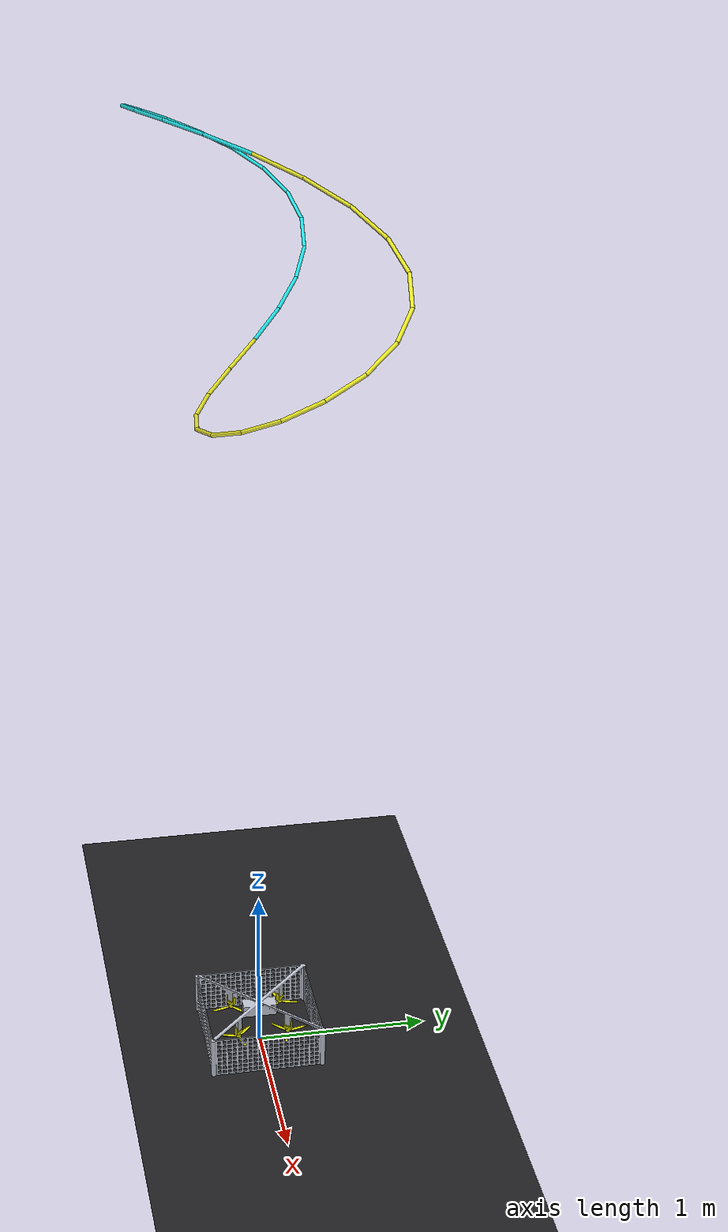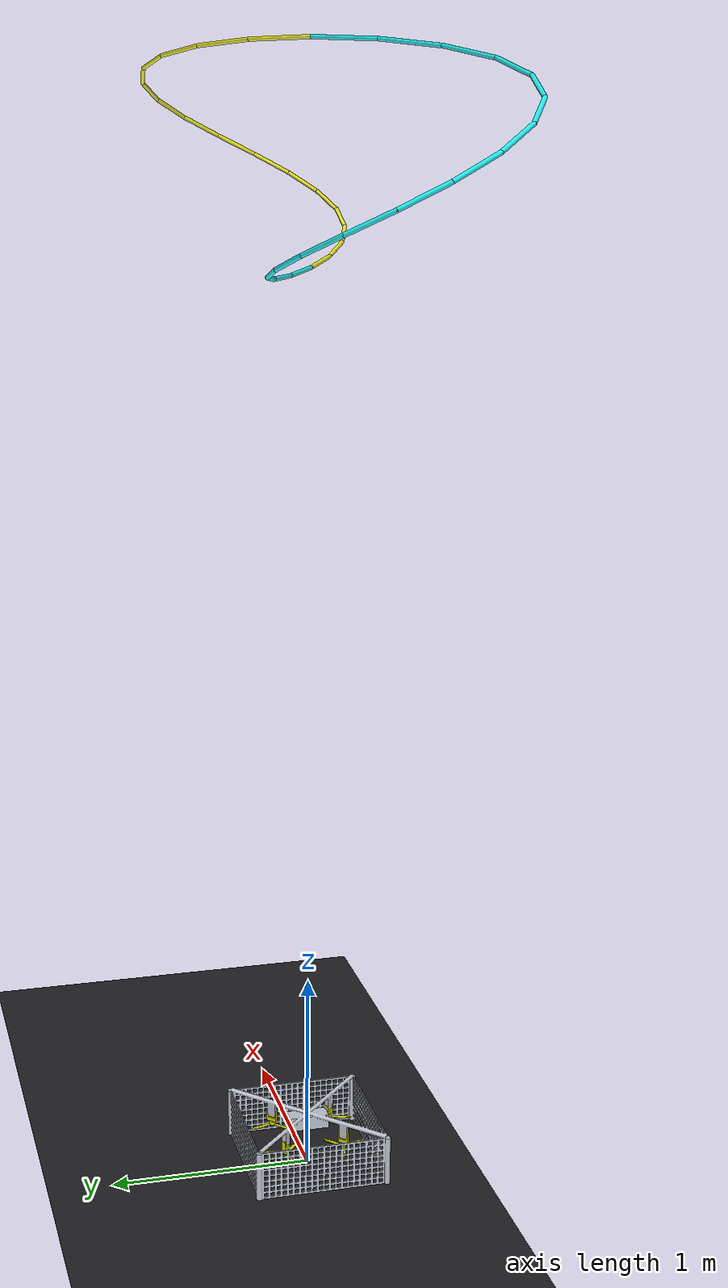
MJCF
<mujoco model="Palletrone">
  <include file="Palletrone.xml"/>

  <visual>
    <headlight diffuse="0.6 0.6 0.6" ambient="0.1 0.1 0.1" specular="0 0 0"/>
    <rgba haze="0.3 0.3 0.3 1"/>
    <global azimuth="45" elevation="35.264" ellipsoidinertia="false"/>
  </visual>

  <asset>
    <texture type="skybox" builtin="gradient" rgb1="0.5 0.5 0.5" rgb2="0 0 0" width="512" height="3072"/>
    <texture type="2d" name="groundplane" builtin="checker" mark="edge" rgb1="0.15 0.15 0.17" rgb2="0.1 0.1 0.1"
      markrgb="0.3 0.3 0.3" width="100" height="100"/>
    <material name="groundplane" texture="groundplane" texuniform="true" texrepeat="2 2" reflectance="0"/>
  </asset>

  <worldbody>
    <light pos="0 0 10" dir="0 0 -1" directional="true"/>
    <geom name="floor" size="0 0 0.05" type="plane" material="groundplane" contype="1" conaffinity="1"/>

    <geom type="capsule" fromto="0.0000 0.0000 5.5000 0.3902 0.1913 5.4904" size="0.01" rgba="1 1 0 0.8" contype="0" conaffinity="0"/>
    <geom type="capsule" fromto="0.3902 0.1913 5.4904 0.7654 0.3536 5.4619" size="0.01" rgba="1 1 0 0.8" contype="0" conaffinity="0"/>
    <geom type="capsule" fromto="0.7654 0.3536 5.4619 1.1111 0.4619 5.4157" size="0.01" rgba="1 1 0 0.8" contype="0" conaffinity="0"/>
    <geom type="capsule" fromto="1.1111 0.4619 5.4157 1.4142 0.5000 5.3536" size="0.01" rgba="1 1 0 0.8" contype="0" conaffinity="0"/>
    <geom type="capsule" fromto="1.4142 0.5000 5.3536 1.6629 0.4619 5.2778" size="0.01" rgba="1 1 0 0.8" contype="0" conaffinity="0"/>
    <geom type="capsule" fromto="1.6629 0.4619 5.2778 1.8478 0.3536 5.1913" size="0.01" rgba="1 1 0 0.8" contype="0" conaffinity="0"/>
    <geom type="capsule" fromto="1.8478 0.3536 5.1913 1.9635 0.1913 5.0975" size="0.01" rgba="1 1 0 0.8" contype="0" conaffinity="0"/>
    <geom type="capsule" fromto="1.9635 0.1913 5.0975 2.0000 0.0000 5.0000" size="0.01" rgba="1 1 0 0.8" contype="0" conaffinity="0"/>
    <geom type="capsule" fromto="2.0000 0.0000 5.0000 1.9635 -0.1913 4.9025" size="0.01" rgba="1 1 0 0.8" contype="0" conaffinity="0"/>
    <geom type="capsule" fromto="1.9635 -0.1913 4.9025 1.8478 -0.3536 4.8087" size="0.01" rgba="1 1 0 0.8" contype="0" conaffinity="0"/>
    <geom type="capsule" fromto="1.8478 -0.3536 4.8087 1.6629 -0.4619 4.7222" size="0.01" rgba="1 1 0 0.8" contype="0" conaffinity="0"/>
    <geom type="capsule" fromto="1.6629 -0.4619 4.7222 1.4142 -0.5000 4.6464" size="0.01" rgba="1 1 0 0.8" contype="0" conaffinity="0"/>
    <geom type="capsule" fromto="1.4142 -0.5000 4.6464 1.1111 -0.4619 4.5843" size="0.01" rgba="1 1 0 0.8" contype="0" conaffinity="0"/>
    <geom type="capsule" fromto="1.1111 -0.4619 4.5843 0.7654 -0.3536 4.5381" size="0.01" rgba="1 1 0 0.8" contype="0" conaffinity="0"/>
    <geom type="capsule" fromto="0.7654 -0.3536 4.5381 0.3902 -0.1913 4.5096" size="0.01" rgba="1 1 0 0.8" contype="0" conaffinity="0"/>
    <geom type="capsule" fromto="0.3902 -0.1913 4.5096 0.0000 -0.0000 4.5000" size="0.01" rgba="1 1 0 0.8" contype="0" conaffinity="0"/>

    <geom type="capsule" fromto="0.0000 -0.0000 4.5000 -0.3902 0.1913 4.5096" size="0.01" rgba="0 1 1 0.8" contype="0" conaffinity="0"/>
    <geom type="capsule" fromto="-0.3902 0.1913 4.5096 -0.7654 0.3536 4.5381" size="0.01" rgba="0 1 1 0.8" contype="0" conaffinity="0"/>
    <geom type="capsule" fromto="-0.7654 0.3536 4.5381 -1.1111 0.4619 4.5843" size="0.01" rgba="0 1 1 0.8" contype="0" conaffinity="0"/>
    <geom type="capsule" fromto="-1.1111 0.4619 4.5843 -1.4142 0.5000 4.6464" size="0.01" rgba="0 1 1 0.8" contype="0" conaffinity="0"/>
    <geom type="capsule" fromto="-1.4142 0.5000 4.6464 -1.6629 0.4619 4.7222" size="0.01" rgba="0 1 1 0.8" contype="0" conaffinity="0"/>
    <geom type="capsule" fromto="-1.6629 0.4619 4.7222 -1.8478 0.3536 4.8087" size="0.01" rgba="0 1 1 0.8" contype="0" conaffinity="0"/>
    <geom type="capsule" fromto="-1.8478 0.3536 4.8087 -1.9635 0.1913 4.9025" size="0.01" rgba="0 1 1 0.8" contype="0" conaffinity="0"/>
    <geom type="capsule" fromto="-1.9635 0.1913 4.9025 -2.0000 0.0000 5.0000" size="0.01" rgba="0 1 1 0.8" contype="0" conaffinity="0"/>
    <geom type="capsule" fromto="-2.0000 0.0000 5.0000 -1.9635 -0.1913 5.0975" size="0.01" rgba="0 1 1 0.8" contype="0" conaffinity="0"/>
    <geom type="capsule" fromto="-1.9635 -0.1913 5.0975 -1.8478 -0.3536 5.1913" size="0.01" rgba="0 1 1 0.8" contype="0" conaffinity="0"/>
    <geom type="capsule" fromto="-1.8478 -0.3536 5.1913 -1.6629 -0.4619 5.2778" size="0.01" rgba="0 1 1 0.8" contype="0" conaffinity="0"/>
    <geom type="capsule" fromto="-1.6629 -0.4619 5.2778 -1.4142 -0.5000 5.3536" size="0.01" rgba="0 1 1 0.8" contype="0" conaffinity="0"/>
    <geom type="capsule" fromto="-1.4142 -0.5000 5.3536 -1.1111 -0.4619 5.4157" size="0.01" rgba="0 1 1 0.8" contype="0" conaffinity="0"/>
    <geom type="capsule" fromto="-1.1111 -0.4619 5.4157 -0.7654 -0.3536 5.4619" size="0.01" rgba="0 1 1 0.8" contype="0" conaffinity="0"/>
    <geom type="capsule" fromto="-0.7654 -0.3536 5.4619 -0.3902 -0.1913 5.4904" size="0.01" rgba="0 1 1 0.8" contype="0" conaffinity="0"/>
    <geom type="capsule" fromto="-0.3902 -0.1913 5.4904 -0.0000 -0.0000 5.5000" size="0.01" rgba="0 1 1 0.8" contype="0" conaffinity="0"/>

  </worldbody>
</mujoco>

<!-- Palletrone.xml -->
<mujoco model="Palletrone">
  <asset>
    <mesh name="body_mesh"       file="BODY.stl"/>
    <mesh name="servo_prop_mesh" file="PROP.stl"/>
  </asset>

  <worldbody>
    <body name="base" pos="0 0 0.145">
      <freejoint name="root"/>
      <inertial pos="0 0 0" quat="1 0 0 0" mass="4.00" diaginertia="0.360091 0.360702 0.660702"/>
      <geom name="base_vis" type="mesh" mesh="body_mesh" rgba="0.75 0.77 0.82 1" contype="1" conaffinity="1"/>

      <site name="imu" pos="0 0 0" quat="1 0 0 0"/>

      <body name="servo1" pos="0.148492 0.148492 0.145" quat="0.9238795 0 0 0.3826834">
        <joint name="j_servo1" type="hinge" axis="1 0 0" pos="0 0 -0.075" range="-0.51 0.51" damping="0.1"/>
        <body name="prop1_body" pos="0 0 -0.075">
          <geom name="servo1_vis" type="mesh" mesh="servo_prop_mesh" mass="0.2"
                quat="0.7071068 0 0 0.7071068"
                rgba="0.85 0.85 0.0 1" contype="0" conaffinity="0"/>
          <site name="prop1_site" pos="0 0 0" size="0.004" type="sphere"/>
        </body>
      </body>

      <body name="servo2" pos="-0.148492 0.148492 0.145" quat="0.3826834 0 0 0.9238795">
        <joint name="j_servo2" type="hinge" axis="1 0 0" pos="0 0 -0.075" range="-0.51 0.51" damping="0.1"/>
        <body name="prop2_body" pos="0 0 -0.075">
          <geom name="servo2_vis" type="mesh" mesh="servo_prop_mesh" mass="0.2"
                quat="0.7071068 0 0 0.7071068"
                rgba="0.85 0.85 0.0 1" contype="0" conaffinity="0"/>
          <site name="prop2_site" pos="0 0 0" size="0.004" type="sphere"/>
        </body>
      </body>

      <body name="servo3" pos="-0.148492 -0.148492 0.145" quat="0.3826834 0 0 -0.9238795">
        <joint name="j_servo3" type="hinge" axis="1 0 0" pos="0 0 -0.075" range="-0.51 0.51" damping="0.1"/>
        <body name="prop3_body" pos="0 0 -0.075">
          <geom name="servo3_vis" type="mesh" mesh="servo_prop_mesh" mass="0.2"
                quat="0.7071068 0 0 0.7071068"
                rgba="0.85 0.85 0.0 1" contype="0" conaffinity="0"/>
          <site name="prop3_site" pos="0 0 0" size="0.004" type="sphere"/>
        </body>
      </body>

      <body name="servo4" pos="0.148492 -0.148492 0.145" quat="0.9238795 0 0 -0.3826834">
        <joint name="j_servo4" type="hinge" axis="1 0 0" pos="0 0 -0.075" range="-0.51 0.51" damping="0.1"/>
        <body name="prop4_body" pos="0 0 -0.075">
          <geom name="servo4_vis" type="mesh" mesh="servo_prop_mesh" mass="0.2"
                quat="0.7071068 0 0 0.7071068"
                rgba="0.85 0.85 0.0 1" contype="0" conaffinity="0"/>
          <site name="prop4_site" pos="0 0 0" size="0.004" type="sphere"/>
        </body>
      </body>
    </body>
  </worldbody>

  <actuator>
    <general name="BLDC1" site="prop1_site" gear="0 0 1 0 0  0.02"  ctrlrange="0 50"/>
    <general name="BLDC2" site="prop2_site" gear="0 0 1 0 0 -0.02"  ctrlrange="0 50"/>
    <general name="BLDC3" site="prop3_site" gear="0 0 1 0 0  0.02"  ctrlrange="0 50"/>
    <general name="BLDC4" site="prop4_site" gear="0 0 1 0 0 -0.02"  ctrlrange="0 50"/>

    <position name="servo1_pos" joint="j_servo1" kp="50" kv="0.02" ctrlrange="-0.51 0.51"/>
    <position name="servo2_pos" joint="j_servo2" kp="50" kv="0.02" ctrlrange="-0.51 0.51"/>
    <position name="servo3_pos" joint="j_servo3" kp="50" kv="0.02" ctrlrange="-0.51 0.51"/>
    <position name="servo4_pos" joint="j_servo4" kp="50" kv="0.02" ctrlrange="-0.51 0.51"/>
  </actuator>

  <sensor>
    <framequat   name="body_quat"   objtype="site" objname="imu"/>
    <gyro        name="body_gyro"   site="imu"/>
    <framepos    name="base_pos"    objtype="body" objname="base"/>
    <framelinvel name="base_linvel" objtype="body" objname="base"/>

    <jointpos name="servo1_angle" joint="j_servo1"/>
    <jointpos name="servo2_angle" joint="j_servo2"/>
    <jointpos name="servo3_angle" joint="j_servo3"/>
    <jointpos name="servo4_angle" joint="j_servo4"/>
  </sensor>
</mujoco>
